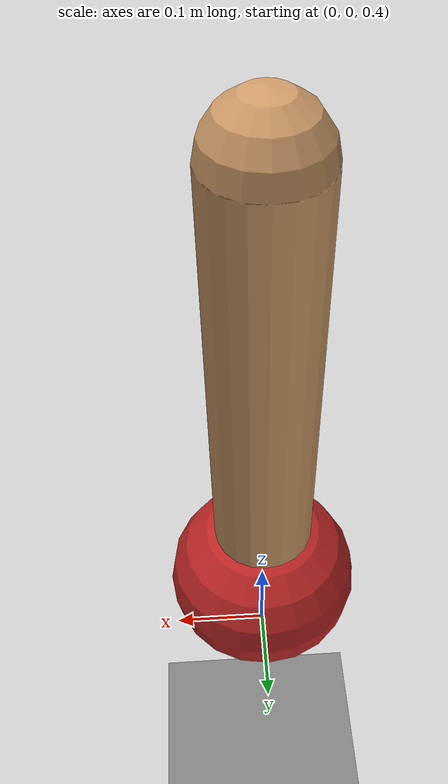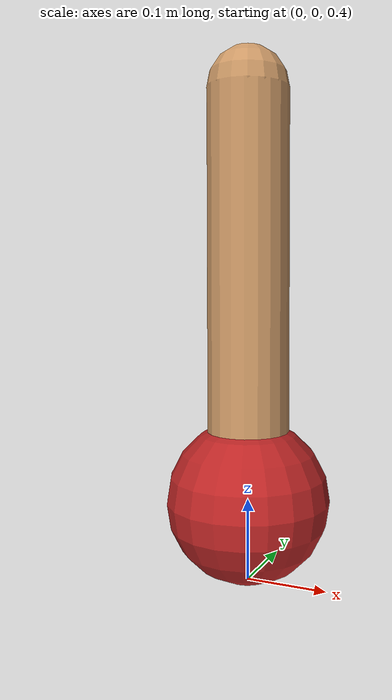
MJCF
<mujoco model="simple pendulum">
  <option timestep="0.002"/>

  <worldbody>
    <light pos="0 0 3" dir="0 0 -1"/>
    <geom type="plane" size="1 1 0.1" rgba="0.5 0.5 0.5 1"/>

    <body name="pendulum" pos="0 0 1">
      <joint name="hinge" type="hinge" axis="0 1 0" damping="0.1"/>
      <geom type="capsule" fromto="0 0 0 0 0 -0.5" size="0.05" rgba="0.8 0.6 0.4 1"/>
      <body name="ball" pos="0 0 -0.5">
        <geom type="sphere" size="0.1" rgba="0.75 0.15 0.15 1"/>
      </body>
    </body>
  </worldbody>

  <actuator>
    <motor name="hinge" joint="hinge" gear="1"/>
  </actuator>

  <keyframe>
    <key name="start" qpos="1.0"/>  <!-- Start at 1.0 rad (~57.3 degrees) -->
  </keyframe>
</mujoco>
